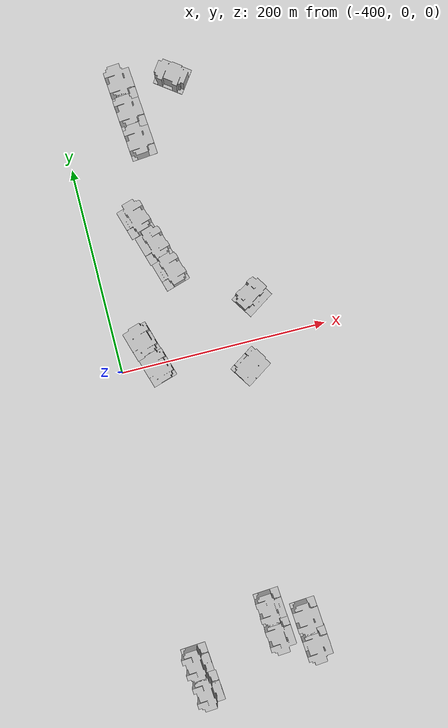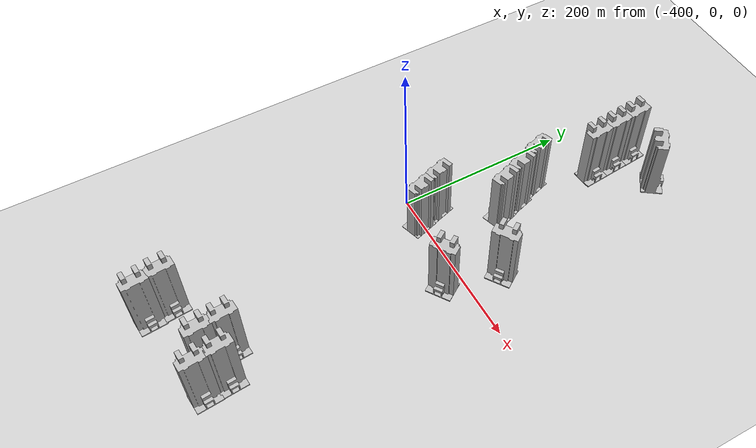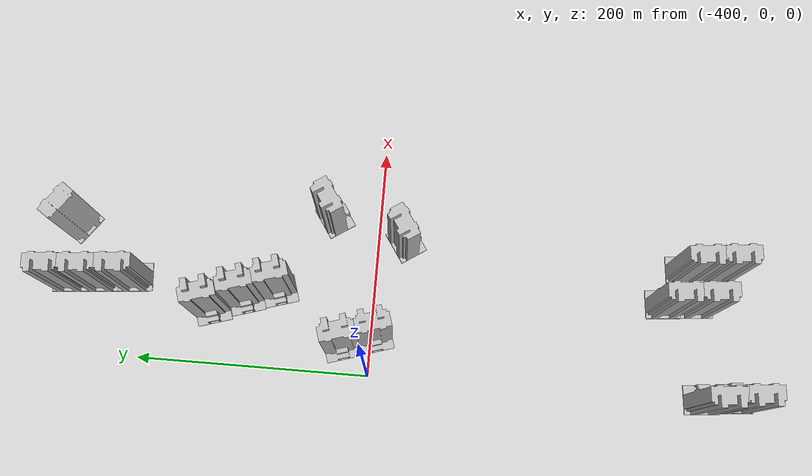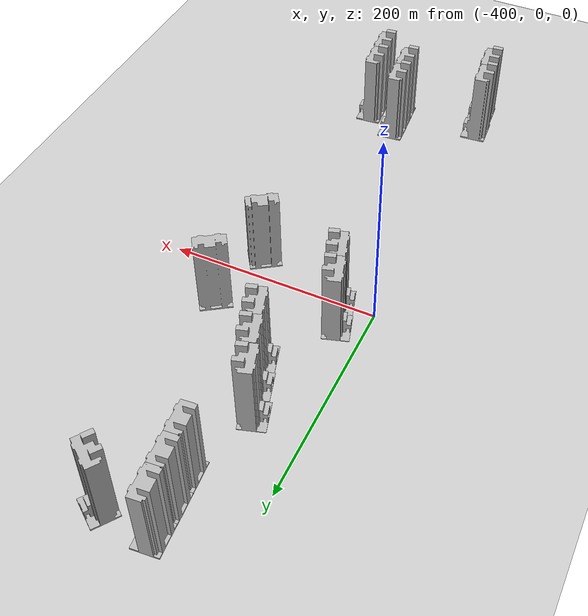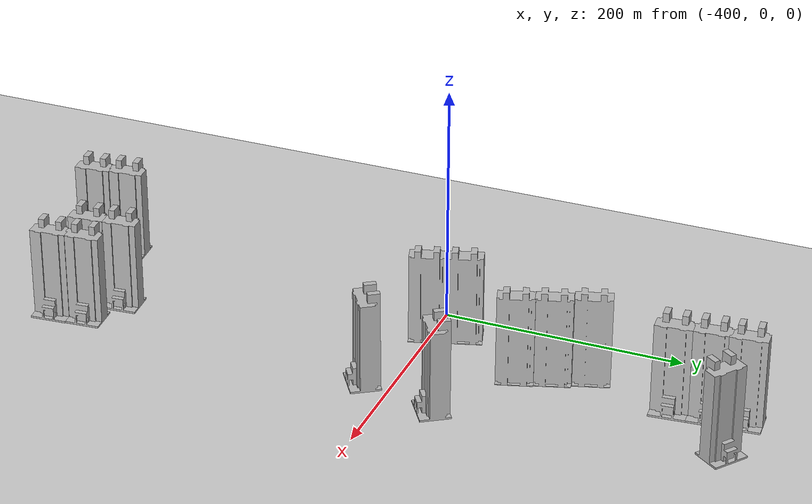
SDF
<sdf version="1.7">
 <world name="default">
  <model name="ground_plane">
   <static>1</static>
   <link name="link">
    <collision name="collision">
     <geometry><plane><normal>0 0 1</normal><size>1200 675</size></plane></geometry>
     <surface><friction><ode><mu>100</mu><mu2>50</mu2></ode></friction></surface>
    </collision>
    <visual name="visual">
     <cast_shadows>0</cast_shadows>
     <geometry><plane><normal>0 0 1</normal><size>1200 675</size></plane></geometry>
     <material>
      <script><uri>file://media/materials/scripts/gazebo.material</uri><name>Gazebo/Grey</name></script>
     </material>
    </visual>
   </link>
  </model>
  <model name="apartment_clone_5">
   <static>1</static>
   <link name="link_0">
    <inertial>
     <mass>1</mass>
     <inertia>
      <ixx>0.166667</ixx>
      <ixy>0</ixy>
      <ixz>0</ixz>
      <iyy>0.166667</iyy>
      <iyz>0</iyz>
      <izz>0.166667</izz>
     </inertia>
    </inertial>
    <pose>0.000226 2e-06 0 0 -0 0</pose>
    <visual name="visual">
     <geometry>
      <mesh>
       <uri>/home/leejeonghun/model_editor_models/apartment/scripts/apartment.dae</uri>
       <scale>0.4 0.4 0.5</scale>
      </mesh>
     </geometry>
     <material>
      <lighting>1</lighting>
      <script>
       <uri>/home/leejeonghun/model_editor_models/apartment/scripts/building.jpg</uri>
       <name>__default__</name>
      </script>
      <shader type="pixel"/>
     </material>
    </visual>
    <collision name="collision">
     <geometry>
      <mesh>
       <uri>/home/leejeonghun/model_editor_models/apartment/scripts/apartment.dae</uri>
       <scale>0.4 0.4 0.5</scale>
      </mesh>
     </geometry>
     <surface>
      <friction>
       <ode><mu>1</mu><mu2>1</mu2><fdir1>0 0 0</fdir1><slip1>0</slip1><slip2>0</slip2></ode>
       <torsional>
        <coefficient>1</coefficient>
        <patch_radius>0</patch_radius>
        <surface_radius>0</surface_radius>
        <use_patch_radius>1</use_patch_radius>
        <ode><slip>0</slip></ode>
       </torsional>
      </friction>
      <bounce><restitution_coefficient>0</restitution_coefficient><threshold>1e+06</threshold></bounce>
      <contact>
       <collide_without_contact>0</collide_without_contact>
       <collide_without_contact_bitmask>1</collide_without_contact_bitmask>
       <collide_bitmask>1</collide_bitmask>
       <ode>
        <soft_cfm>0</soft_cfm>
        <soft_erp>0.2</soft_erp>
        <kp>1e+13</kp>
        <kd>1</kd>
        <max_vel>0.01</max_vel>
        <min_depth>0</min_depth>
       </ode>
       <bullet>
        <split_impulse>1</split_impulse>
        <split_impulse_penetration_threshold>-0.01</split_impulse_penetration_threshold>
        <soft_cfm>0</soft_cfm>
        <soft_erp>0.2</soft_erp>
        <kp>1e+13</kp>
        <kd>1</kd>
       </bullet>
      </contact>
     </surface>
    </collision>
   </link>
   <static>0</static>
   <pose>-262.551 42.3093 1.45895 0 -0 0.586882</pose>
  </model>
  <model name="apartment_clone_6">
   <static>1</static>
   <link name="link_0">
    <inertial>
     <mass>1</mass>
     <inertia>
      <ixx>0.166667</ixx>
      <ixy>0</ixy>
      <ixz>0</ixz>
      <iyy>0.166667</iyy>
      <iyz>0</iyz>
      <izz>0.166667</izz>
     </inertia>
    </inertial>
    <pose>0.000226 2e-06 0 0 -0 0</pose>
    <visual name="visual">
     <geometry>
      <mesh>
       <uri>/home/leejeonghun/model_editor_models/apartment/scripts/apartment.dae</uri>
       <scale>0.4 0.4 0.5</scale>
      </mesh>
     </geometry>
     <material>
      <lighting>1</lighting>
      <script>
       <uri>/home/leejeonghun/model_editor_models/apartment/scripts/building.jpg</uri>
       <name>__default__</name>
      </script>
      <shader type="pixel"/>
     </material>
    </visual>
    <collision name="collision">
     <geometry>
      <mesh>
       <uri>/home/leejeonghun/model_editor_models/apartment/scripts/apartment.dae</uri>
       <scale>0.4 0.4 0.5</scale>
      </mesh>
     </geometry>
     <surface>
      <friction>
       <ode><mu>1</mu><mu2>1</mu2><fdir1>0 0 0</fdir1><slip1>0</slip1><slip2>0</slip2></ode>
       <torsional>
        <coefficient>1</coefficient>
        <patch_radius>0</patch_radius>
        <surface_radius>0</surface_radius>
        <use_patch_radius>1</use_patch_radius>
        <ode><slip>0</slip></ode>
       </torsional>
      </friction>
      <bounce><restitution_coefficient>0</restitution_coefficient><threshold>1e+06</threshold></bounce>
      <contact>
       <collide_without_contact>0</collide_without_contact>
       <collide_without_contact_bitmask>1</collide_without_contact_bitmask>
       <collide_bitmask>1</collide_bitmask>
       <ode>
        <soft_cfm>0</soft_cfm>
        <soft_erp>0.2</soft_erp>
        <kp>1e+13</kp>
        <kd>1</kd>
        <max_vel>0.01</max_vel>
        <min_depth>0</min_depth>
       </ode>
       <bullet>
        <split_impulse>1</split_impulse>
        <split_impulse_penetration_threshold>-0.01</split_impulse_penetration_threshold>
        <soft_cfm>0</soft_cfm>
        <soft_erp>0.2</soft_erp>
        <kp>1e+13</kp>
        <kd>1</kd>
       </bullet>
      </contact>
     </surface>
    </collision>
   </link>
   <static>0</static>
   <pose>-279.756 -22.2909 1.45895 0 -0 0.586882</pose>
  </model>
  <model name="apartment_clone_8_clone_0">
   <static>1</static>
   <link name="link_0">
    <inertial>
     <mass>1</mass>
     <inertia>
      <ixx>0.166667</ixx>
      <ixy>0</ixy>
      <ixz>0</ixz>
      <iyy>0.166667</iyy>
      <iyz>0</iyz>
      <izz>0.166667</izz>
     </inertia>
    </inertial>
    <pose>0.000226 2e-06 0 0 -0 0</pose>
    <visual name="visual">
     <geometry>
      <mesh>
       <uri>/home/leejeonghun/model_editor_models/apartment/scripts/apartment.dae</uri>
       <scale>0.4 0.4 0.5</scale>
      </mesh>
     </geometry>
     <material>
      <lighting>1</lighting>
      <script>
       <uri>/home/leejeonghun/model_editor_models/apartment/scripts/building.jpg</uri>
       <name>__default__</name>
      </script>
      <shader type="pixel"/>
     </material>
    </visual>
    <collision name="collision">
     <geometry>
      <mesh>
       <uri>/home/leejeonghun/model_editor_models/apartment/scripts/apartment.dae</uri>
       <scale>0.4 0.4 0.5</scale>
      </mesh>
     </geometry>
     <surface>
      <friction>
       <ode><mu>1</mu><mu2>1</mu2><fdir1>0 0 0</fdir1><slip1>0</slip1><slip2>0</slip2></ode>
       <torsional>
        <coefficient>1</coefficient>
        <patch_radius>0</patch_radius>
        <surface_radius>0</surface_radius>
        <use_patch_radius>1</use_patch_radius>
        <ode><slip>0</slip></ode>
       </torsional>
      </friction>
      <bounce><restitution_coefficient>0</restitution_coefficient><threshold>1e+06</threshold></bounce>
      <contact>
       <collide_without_contact>0</collide_without_contact>
       <collide_without_contact_bitmask>1</collide_without_contact_bitmask>
       <collide_bitmask>1</collide_bitmask>
       <ode>
        <soft_cfm>0</soft_cfm>
        <soft_erp>0.2</soft_erp>
        <kp>1e+13</kp>
        <kd>1</kd>
        <max_vel>0.01</max_vel>
        <min_depth>0</min_depth>
       </ode>
       <bullet>
        <split_impulse>1</split_impulse>
        <split_impulse_penetration_threshold>-0.01</split_impulse_penetration_threshold>
        <soft_cfm>0</soft_cfm>
        <soft_erp>0.2</soft_erp>
        <kp>1e+13</kp>
        <kd>1</kd>
       </bullet>
      </contact>
     </surface>
    </collision>
   </link>
   <static>0</static>
   <pose>-336.315 267.967 1.45895 0 -0 1.65687</pose>
  </model>
  <model name="apartment_clone_8_clone_1">
   <static>1</static>
   <link name="link_0">
    <inertial>
     <mass>1</mass>
     <inertia>
      <ixx>0.166667</ixx>
      <ixy>0</ixy>
      <ixz>0</ixz>
      <iyy>0.166667</iyy>
      <iyz>0</iyz>
      <izz>0.166667</izz>
     </inertia>
    </inertial>
    <pose>0.000226 2e-06 0 0 -0 0</pose>
    <visual name="visual">
     <geometry>
      <mesh>
       <uri>/home/leejeonghun/model_editor_models/apartment/scripts/apartment.dae</uri>
       <scale>0.4 0.4 0.5</scale>
      </mesh>
     </geometry>
     <material>
      <lighting>1</lighting>
      <script>
       <uri>/home/leejeonghun/model_editor_models/apartment/scripts/building.jpg</uri>
       <name>__default__</name>
      </script>
      <shader type="pixel"/>
     </material>
    </visual>
    <collision name="collision">
     <geometry>
      <mesh>
       <uri>/home/leejeonghun/model_editor_models/apartment/scripts/apartment.dae</uri>
       <scale>0.4 0.4 0.5</scale>
      </mesh>
     </geometry>
     <surface>
      <friction>
       <ode><mu>1</mu><mu2>1</mu2><fdir1>0 0 0</fdir1><slip1>0</slip1><slip2>0</slip2></ode>
       <torsional>
        <coefficient>1</coefficient>
        <patch_radius>0</patch_radius>
        <surface_radius>0</surface_radius>
        <use_patch_radius>1</use_patch_radius>
        <ode><slip>0</slip></ode>
       </torsional>
      </friction>
      <bounce><restitution_coefficient>0</restitution_coefficient><threshold>1e+06</threshold></bounce>
      <contact>
       <collide_without_contact>0</collide_without_contact>
       <collide_without_contact_bitmask>1</collide_without_contact_bitmask>
       <collide_bitmask>1</collide_bitmask>
       <ode>
        <soft_cfm>0</soft_cfm>
        <soft_erp>0.2</soft_erp>
        <kp>1e+13</kp>
        <kd>1</kd>
        <max_vel>0.01</max_vel>
        <min_depth>0</min_depth>
       </ode>
       <bullet>
        <split_impulse>1</split_impulse>
        <split_impulse_penetration_threshold>-0.01</split_impulse_penetration_threshold>
        <soft_cfm>0</soft_cfm>
        <soft_erp>0.2</soft_erp>
        <kp>1e+13</kp>
        <kd>1</kd>
       </bullet>
      </contact>
     </surface>
    </collision>
   </link>
   <static>0</static>
   <pose>-334.105 239.915 1.45895 0 -0 1.65687</pose>
  </model>
  <model name="apartment_clone_8_clone_2">
   <static>1</static>
   <link name="link_0">
    <inertial>
     <mass>1</mass>
     <inertia>
      <ixx>0.166667</ixx>
      <ixy>0</ixy>
      <ixz>0</ixz>
      <iyy>0.166667</iyy>
      <iyz>0</iyz>
      <izz>0.166667</izz>
     </inertia>
    </inertial>
    <pose>0.000226 2e-06 0 0 -0 0</pose>
    <visual name="visual">
     <geometry>
      <mesh>
       <uri>/home/leejeonghun/model_editor_models/apartment/scripts/apartment.dae</uri>
       <scale>0.4 0.4 0.5</scale>
      </mesh>
     </geometry>
     <material>
      <lighting>1</lighting>
      <script>
       <uri>/home/leejeonghun/model_editor_models/apartment/scripts/building.jpg</uri>
       <name>__default__</name>
      </script>
      <shader type="pixel"/>
     </material>
    </visual>
    <collision name="collision">
     <geometry>
      <mesh>
       <uri>/home/leejeonghun/model_editor_models/apartment/scripts/apartment.dae</uri>
       <scale>0.4 0.4 0.5</scale>
      </mesh>
     </geometry>
     <surface>
      <friction>
       <ode><mu>1</mu><mu2>1</mu2><fdir1>0 0 0</fdir1><slip1>0</slip1><slip2>0</slip2></ode>
       <torsional>
        <coefficient>1</coefficient>
        <patch_radius>0</patch_radius>
        <surface_radius>0</surface_radius>
        <use_patch_radius>1</use_patch_radius>
        <ode><slip>0</slip></ode>
       </torsional>
      </friction>
      <bounce><restitution_coefficient>0</restitution_coefficient><threshold>1e+06</threshold></bounce>
      <contact>
       <collide_without_contact>0</collide_without_contact>
       <collide_without_contact_bitmask>1</collide_without_contact_bitmask>
       <collide_bitmask>1</collide_bitmask>
       <ode>
        <soft_cfm>0</soft_cfm>
        <soft_erp>0.2</soft_erp>
        <kp>1e+13</kp>
        <kd>1</kd>
        <max_vel>0.01</max_vel>
        <min_depth>0</min_depth>
       </ode>
       <bullet>
        <split_impulse>1</split_impulse>
        <split_impulse_penetration_threshold>-0.01</split_impulse_penetration_threshold>
        <soft_cfm>0</soft_cfm>
        <soft_erp>0.2</soft_erp>
        <kp>1e+13</kp>
        <kd>1</kd>
       </bullet>
      </contact>
     </surface>
    </collision>
   </link>
   <static>0</static>
   <pose>-331.53 210.597 1.45895 0 -0 1.65687</pose>
  </model>
  <model name="apartment_clone_8_clone_3">
   <static>1</static>
   <link name="link_0">
    <inertial>
     <mass>1</mass>
     <inertia>
      <ixx>0.166667</ixx>
      <ixy>0</ixy>
      <ixz>0</ixz>
      <iyy>0.166667</iyy>
      <iyz>0</iyz>
      <izz>0.166667</izz>
     </inertia>
    </inertial>
    <pose>0.000226 2e-06 0 0 -0 0</pose>
    <visual name="visual">
     <geometry>
      <mesh>
       <uri>/home/leejeonghun/model_editor_models/apartment/scripts/apartment.dae</uri>
       <scale>0.4 0.4 0.5</scale>
      </mesh>
     </geometry>
     <material>
      <lighting>1</lighting>
      <script>
       <uri>/home/leejeonghun/model_editor_models/apartment/scripts/building.jpg</uri>
       <name>__default__</name>
      </script>
      <shader type="pixel"/>
     </material>
    </visual>
    <collision name="collision">
     <geometry>
      <mesh>
       <uri>/home/leejeonghun/model_editor_models/apartment/scripts/apartment.dae</uri>
       <scale>0.4 0.4 0.5</scale>
      </mesh>
     </geometry>
     <surface>
      <friction>
       <ode><mu>1</mu><mu2>1</mu2><fdir1>0 0 0</fdir1><slip1>0</slip1><slip2>0</slip2></ode>
       <torsional>
        <coefficient>1</coefficient>
        <patch_radius>0</patch_radius>
        <surface_radius>0</surface_radius>
        <use_patch_radius>1</use_patch_radius>
        <ode><slip>0</slip></ode>
       </torsional>
      </friction>
      <bounce><restitution_coefficient>0</restitution_coefficient><threshold>1e+06</threshold></bounce>
      <contact>
       <collide_without_contact>0</collide_without_contact>
       <collide_without_contact_bitmask>1</collide_without_contact_bitmask>
       <collide_bitmask>1</collide_bitmask>
       <ode>
        <soft_cfm>0</soft_cfm>
        <soft_erp>0.2</soft_erp>
        <kp>1e+13</kp>
        <kd>1</kd>
        <max_vel>0.01</max_vel>
        <min_depth>0</min_depth>
       </ode>
       <bullet>
        <split_impulse>1</split_impulse>
        <split_impulse_penetration_threshold>-0.01</split_impulse_penetration_threshold>
        <soft_cfm>0</soft_cfm>
        <soft_erp>0.2</soft_erp>
        <kp>1e+13</kp>
        <kd>1</kd>
       </bullet>
      </contact>
     </surface>
    </collision>
   </link>
   <static>0</static>
   <pose>-285.637 263.644 1.45895 0 -0 2.51739</pose>
  </model>
  <model name="apartment_0">
   <static>1</static>
   <link name="link_0">
    <inertial>
     <mass>1</mass>
     <inertia>
      <ixx>0.166667</ixx>
      <ixy>0</ixy>
      <ixz>0</ixz>
      <iyy>0.166667</iyy>
      <iyz>0</iyz>
      <izz>0.166667</izz>
     </inertia>
    </inertial>
    <pose>0.000226 2e-06 0 0 -0 0</pose>
    <visual name="visual">
     <geometry>
      <mesh>
       <uri>/home/leejeonghun/model_editor_models/apartment/scripts/apartment.dae</uri>
       <scale>0.4 0.4 0.5</scale>
      </mesh>
     </geometry>
     <material>
      <lighting>1</lighting>
      <script>
       <uri>/home/leejeonghun/model_editor_models/apartment/scripts/building.jpg</uri>
       <name>__default__</name>
      </script>
      <shader type="pixel"/>
     </material>
    </visual>
    <collision name="collision">
     <geometry>
      <mesh>
       <uri>/home/leejeonghun/model_editor_models/apartment/scripts/apartment.dae</uri>
       <scale>0.4 0.4 0.5</scale>
      </mesh>
     </geometry>
     <surface>
      <friction>
       <ode><mu>1</mu><mu2>1</mu2><fdir1>0 0 0</fdir1><slip1>0</slip1><slip2>0</slip2></ode>
       <torsional>
        <coefficient>1</coefficient>
        <patch_radius>0</patch_radius>
        <surface_radius>0</surface_radius>
        <use_patch_radius>1</use_patch_radius>
        <ode><slip>0</slip></ode>
       </torsional>
      </friction>
      <bounce><restitution_coefficient>0</restitution_coefficient><threshold>1e+06</threshold></bounce>
      <contact>
       <collide_without_contact>0</collide_without_contact>
       <collide_without_contact_bitmask>1</collide_without_contact_bitmask>
       <collide_bitmask>1</collide_bitmask>
       <ode>
        <soft_cfm>0</soft_cfm>
        <soft_erp>0.2</soft_erp>
        <kp>1e+13</kp>
        <kd>1</kd>
        <max_vel>0.01</max_vel>
        <min_depth>0</min_depth>
       </ode>
       <bullet>
        <split_impulse>1</split_impulse>
        <split_impulse_penetration_threshold>-0.01</split_impulse_penetration_threshold>
        <soft_cfm>0</soft_cfm>
        <soft_erp>0.2</soft_erp>
        <kp>1e+13</kp>
        <kd>1</kd>
       </bullet>
      </contact>
     </surface>
    </collision>
   </link>
   <static>0</static>
   <pose>-351.034 140.143 0 0 0 -1.27445</pose>
  </model>
  <model name="apartment_0_clone">
   <static>1</static>
   <link name="link_0">
    <inertial>
     <mass>1</mass>
     <inertia>
      <ixx>0.166667</ixx>
      <ixy>0</ixy>
      <ixz>0</ixz>
      <iyy>0.166667</iyy>
      <iyz>0</iyz>
      <izz>0.166667</izz>
     </inertia>
    </inertial>
    <pose>0.000226 2e-06 0 0 -0 0</pose>
    <visual name="visual">
     <geometry>
      <mesh>
       <uri>/home/leejeonghun/model_editor_models/apartment/scripts/apartment.dae</uri>
       <scale>0.4 0.4 0.5</scale>
      </mesh>
     </geometry>
     <material>
      <lighting>1</lighting>
      <script>
       <uri>/home/leejeonghun/model_editor_models/apartment/scripts/building.jpg</uri>
       <name>__default__</name>
      </script>
      <shader type="pixel"/>
     </material>
    </visual>
    <collision name="collision">
     <geometry>
      <mesh>
       <uri>/home/leejeonghun/model_editor_models/apartment/scripts/apartment.dae</uri>
       <scale>0.4 0.4 0.5</scale>
      </mesh>
     </geometry>
     <surface>
      <friction>
       <ode><mu>1</mu><mu2>1</mu2><fdir1>0 0 0</fdir1><slip1>0</slip1><slip2>0</slip2></ode>
       <torsional>
        <coefficient>1</coefficient>
        <patch_radius>0</patch_radius>
        <surface_radius>0</surface_radius>
        <use_patch_radius>1</use_patch_radius>
        <ode><slip>0</slip></ode>
       </torsional>
      </friction>
      <bounce><restitution_coefficient>0</restitution_coefficient><threshold>1e+06</threshold></bounce>
      <contact>
       <collide_without_contact>0</collide_without_contact>
       <collide_without_contact_bitmask>1</collide_without_contact_bitmask>
       <collide_bitmask>1</collide_bitmask>
       <ode>
        <soft_cfm>0</soft_cfm>
        <soft_erp>0.2</soft_erp>
        <kp>1e+13</kp>
        <kd>1</kd>
        <max_vel>0.01</max_vel>
        <min_depth>0</min_depth>
       </ode>
       <bullet>
        <split_impulse>1</split_impulse>
        <split_impulse_penetration_threshold>-0.01</split_impulse_penetration_threshold>
        <soft_cfm>0</soft_cfm>
        <soft_erp>0.2</soft_erp>
        <kp>1e+13</kp>
        <kd>1</kd>
       </bullet>
      </contact>
     </surface>
    </collision>
   </link>
   <static>0</static>
   <pose>-339.722 111.799 0 0 0 -1.27445</pose>
  </model>
  <model name="apartment_0_clone_0">
   <static>1</static>
   <link name="link_0">
    <inertial>
     <mass>1</mass>
     <inertia>
      <ixx>0.166667</ixx>
      <ixy>0</ixy>
      <ixz>0</ixz>
      <iyy>0.166667</iyy>
      <iyz>0</iyz>
      <izz>0.166667</izz>
     </inertia>
    </inertial>
    <pose>0.000226 2e-06 0 0 -0 0</pose>
    <visual name="visual">
     <geometry>
      <mesh>
       <uri>/home/leejeonghun/model_editor_models/apartment/scripts/apartment.dae</uri>
       <scale>0.4 0.4 0.5</scale>
      </mesh>
     </geometry>
     <material>
      <lighting>1</lighting>
      <script>
       <uri>/home/leejeonghun/model_editor_models/apartment/scripts/building.jpg</uri>
       <name>__default__</name>
      </script>
      <shader type="pixel"/>
     </material>
    </visual>
    <collision name="collision">
     <geometry>
      <mesh>
       <uri>/home/leejeonghun/model_editor_models/apartment/scripts/apartment.dae</uri>
       <scale>0.4 0.4 0.5</scale>
      </mesh>
     </geometry>
     <surface>
      <friction>
       <ode><mu>1</mu><mu2>1</mu2><fdir1>0 0 0</fdir1><slip1>0</slip1><slip2>0</slip2></ode>
       <torsional>
        <coefficient>1</coefficient>
        <patch_radius>0</patch_radius>
        <surface_radius>0</surface_radius>
        <use_patch_radius>1</use_patch_radius>
        <ode><slip>0</slip></ode>
       </torsional>
      </friction>
      <bounce><restitution_coefficient>0</restitution_coefficient><threshold>1e+06</threshold></bounce>
      <contact>
       <collide_without_contact>0</collide_without_contact>
       <collide_without_contact_bitmask>1</collide_without_contact_bitmask>
       <collide_bitmask>1</collide_bitmask>
       <ode>
        <soft_cfm>0</soft_cfm>
        <soft_erp>0.2</soft_erp>
        <kp>1e+13</kp>
        <kd>1</kd>
        <max_vel>0.01</max_vel>
        <min_depth>0</min_depth>
       </ode>
       <bullet>
        <split_impulse>1</split_impulse>
        <split_impulse_penetration_threshold>-0.01</split_impulse_penetration_threshold>
        <soft_cfm>0</soft_cfm>
        <soft_erp>0.2</soft_erp>
        <kp>1e+13</kp>
        <kd>1</kd>
       </bullet>
      </contact>
     </surface>
    </collision>
   </link>
   <static>0</static>
   <pose>-330.246 83.9468 0 0 0 -1.27445</pose>
  </model>
  <model name="apartment_0_clone_0_clone">
   <static>1</static>
   <link name="link_0">
    <inertial>
     <mass>1</mass>
     <inertia>
      <ixx>0.166667</ixx>
      <ixy>0</ixy>
      <ixz>0</ixz>
      <iyy>0.166667</iyy>
      <iyz>0</iyz>
      <izz>0.166667</izz>
     </inertia>
    </inertial>
    <pose>0.000226 2e-06 0 0 -0 0</pose>
    <visual name="visual">
     <geometry>
      <mesh>
       <uri>/home/leejeonghun/model_editor_models/apartment/scripts/apartment.dae</uri>
       <scale>0.4 0.4 0.5</scale>
      </mesh>
     </geometry>
     <material>
      <lighting>1</lighting>
      <script>
       <uri>/home/leejeonghun/model_editor_models/apartment/scripts/building.jpg</uri>
       <name>__default__</name>
      </script>
      <shader type="pixel"/>
     </material>
    </visual>
    <collision name="collision">
     <geometry>
      <mesh>
       <uri>/home/leejeonghun/model_editor_models/apartment/scripts/apartment.dae</uri>
       <scale>0.4 0.4 0.5</scale>
      </mesh>
     </geometry>
     <surface>
      <friction>
       <ode><mu>1</mu><mu2>1</mu2><fdir1>0 0 0</fdir1><slip1>0</slip1><slip2>0</slip2></ode>
       <torsional>
        <coefficient>1</coefficient>
        <patch_radius>0</patch_radius>
        <surface_radius>0</surface_radius>
        <use_patch_radius>1</use_patch_radius>
        <ode><slip>0</slip></ode>
       </torsional>
      </friction>
      <bounce><restitution_coefficient>0</restitution_coefficient><threshold>1e+06</threshold></bounce>
      <contact>
       <collide_without_contact>0</collide_without_contact>
       <collide_without_contact_bitmask>1</collide_without_contact_bitmask>
       <collide_bitmask>1</collide_bitmask>
       <ode>
        <soft_cfm>0</soft_cfm>
        <soft_erp>0.2</soft_erp>
        <kp>1e+13</kp>
        <kd>1</kd>
        <max_vel>0.01</max_vel>
        <min_depth>0</min_depth>
       </ode>
       <bullet>
        <split_impulse>1</split_impulse>
        <split_impulse_penetration_threshold>-0.01</split_impulse_penetration_threshold>
        <soft_cfm>0</soft_cfm>
        <soft_erp>0.2</soft_erp>
        <kp>1e+13</kp>
        <kd>1</kd>
       </bullet>
      </contact>
     </surface>
    </collision>
   </link>
   <static>0</static>
   <pose>-373.551 25.2119 0 0 0 -1.27445</pose>
  </model>
  <model name="apartment_0_clone_0_clone_0">
   <static>1</static>
   <link name="link_0">
    <inertial>
     <mass>1</mass>
     <inertia>
      <ixx>0.166667</ixx>
      <ixy>0</ixy>
      <ixz>0</ixz>
      <iyy>0.166667</iyy>
      <iyz>0</iyz>
      <izz>0.166667</izz>
     </inertia>
    </inertial>
    <pose>0.000226 2e-06 0 0 -0 0</pose>
    <visual name="visual">
     <geometry>
      <mesh>
       <uri>/home/leejeonghun/model_editor_models/apartment/scripts/apartment.dae</uri>
       <scale>0.4 0.4 0.5</scale>
      </mesh>
     </geometry>
     <material>
      <lighting>1</lighting>
      <script>
       <uri>/home/leejeonghun/model_editor_models/apartment/scripts/building.jpg</uri>
       <name>__default__</name>
      </script>
      <shader type="pixel"/>
     </material>
    </visual>
    <collision name="collision">
     <geometry>
      <mesh>
       <uri>/home/leejeonghun/model_editor_models/apartment/scripts/apartment.dae</uri>
       <scale>0.4 0.4 0.5</scale>
      </mesh>
     </geometry>
     <surface>
      <friction>
       <ode><mu>1</mu><mu2>1</mu2><fdir1>0 0 0</fdir1><slip1>0</slip1><slip2>0</slip2></ode>
       <torsional>
        <coefficient>1</coefficient>
        <patch_radius>0</patch_radius>
        <surface_radius>0</surface_radius>
        <use_patch_radius>1</use_patch_radius>
        <ode><slip>0</slip></ode>
       </torsional>
      </friction>
      <bounce><restitution_coefficient>0</restitution_coefficient><threshold>1e+06</threshold></bounce>
      <contact>
       <collide_without_contact>0</collide_without_contact>
       <collide_without_contact_bitmask>1</collide_without_contact_bitmask>
       <collide_bitmask>1</collide_bitmask>
       <ode>
        <soft_cfm>0</soft_cfm>
        <soft_erp>0.2</soft_erp>
        <kp>1e+13</kp>
        <kd>1</kd>
        <max_vel>0.01</max_vel>
        <min_depth>0</min_depth>
       </ode>
       <bullet>
        <split_impulse>1</split_impulse>
        <split_impulse_penetration_threshold>-0.01</split_impulse_penetration_threshold>
        <soft_cfm>0</soft_cfm>
        <soft_erp>0.2</soft_erp>
        <kp>1e+13</kp>
        <kd>1</kd>
       </bullet>
      </contact>
     </surface>
    </collision>
   </link>
   <static>0</static>
   <pose>-364.458 -2.78901 0 0 0 -1.27445</pose>
  </model>
  <model name="apartment_0_clone_0_clone_1_clone_2_clone_2_clone">
   <static>1</static>
   <link name="link_0">
    <inertial>
     <mass>1</mass>
     <inertia>
      <ixx>0.166667</ixx>
      <ixy>0</ixy>
      <ixz>0</ixz>
      <iyy>0.166667</iyy>
      <iyz>0</iyz>
      <izz>0.166667</izz>
     </inertia>
    </inertial>
    <pose>0.000226 2e-06 0 0 -0 0</pose>
    <visual name="visual">
     <geometry>
      <mesh>
       <uri>/home/leejeonghun/model_editor_models/apartment/scripts/apartment.dae</uri>
       <scale>0.4 0.4 0.5</scale>
      </mesh>
     </geometry>
     <material>
      <lighting>1</lighting>
      <script>
       <uri>/home/leejeonghun/model_editor_models/apartment/scripts/building.jpg</uri>
       <name>__default__</name>
      </script>
      <shader type="pixel"/>
     </material>
    </visual>
    <collision name="collision">
     <geometry>
      <mesh>
       <uri>/home/leejeonghun/model_editor_models/apartment/scripts/apartment.dae</uri>
       <scale>0.4 0.4 0.5</scale>
      </mesh>
     </geometry>
     <surface>
      <friction>
       <ode><mu>1</mu><mu2>1</mu2><fdir1>0 0 0</fdir1><slip1>0</slip1><slip2>0</slip2></ode>
       <torsional>
        <coefficient>1</coefficient>
        <patch_radius>0</patch_radius>
        <surface_radius>0</surface_radius>
        <use_patch_radius>1</use_patch_radius>
        <ode><slip>0</slip></ode>
       </torsional>
      </friction>
      <bounce><restitution_coefficient>0</restitution_coefficient><threshold>1e+06</threshold></bounce>
      <contact>
       <collide_without_contact>0</collide_without_contact>
       <collide_without_contact_bitmask>1</collide_without_contact_bitmask>
       <collide_bitmask>1</collide_bitmask>
       <ode>
        <soft_cfm>0</soft_cfm>
        <soft_erp>0.2</soft_erp>
        <kp>1e+13</kp>
        <kd>1</kd>
        <max_vel>0.01</max_vel>
        <min_depth>0</min_depth>
       </ode>
       <bullet>
        <split_impulse>1</split_impulse>
        <split_impulse_penetration_threshold>-0.01</split_impulse_penetration_threshold>
        <soft_cfm>0</soft_cfm>
        <soft_erp>0.2</soft_erp>
        <kp>1e+13</kp>
        <kd>1</kd>
       </bullet>
      </contact>
     </surface>
    </collision>
   </link>
   <static>0</static>
   <pose>-286.018 -268.353 1.76839 0 -0 1.65207</pose>
  </model>
  <model name="apartment_0_clone_0_clone_1_clone_2_clone_2_clone_0">
   <static>1</static>
   <link name="link_0">
    <inertial>
     <mass>1</mass>
     <inertia>
      <ixx>0.166667</ixx>
      <ixy>0</ixy>
      <ixz>0</ixz>
      <iyy>0.166667</iyy>
      <iyz>0</iyz>
      <izz>0.166667</izz>
     </inertia>
    </inertial>
    <pose>0.000226 2e-06 0 0 -0 0</pose>
    <visual name="visual">
     <geometry>
      <mesh>
       <uri>/home/leejeonghun/model_editor_models/apartment/scripts/apartment.dae</uri>
       <scale>0.4 0.4 0.5</scale>
      </mesh>
     </geometry>
     <material>
      <lighting>1</lighting>
      <script>
       <uri>/home/leejeonghun/model_editor_models/apartment/scripts/building.jpg</uri>
       <name>__default__</name>
      </script>
      <shader type="pixel"/>
     </material>
    </visual>
    <collision name="collision">
     <geometry>
      <mesh>
       <uri>/home/leejeonghun/model_editor_models/apartment/scripts/apartment.dae</uri>
       <scale>0.4 0.4 0.5</scale>
      </mesh>
     </geometry>
     <surface>
      <friction>
       <ode><mu>1</mu><mu2>1</mu2><fdir1>0 0 0</fdir1><slip1>0</slip1><slip2>0</slip2></ode>
       <torsional>
        <coefficient>1</coefficient>
        <patch_radius>0</patch_radius>
        <surface_radius>0</surface_radius>
        <use_patch_radius>1</use_patch_radius>
        <ode><slip>0</slip></ode>
       </torsional>
      </friction>
      <bounce><restitution_coefficient>0</restitution_coefficient><threshold>1e+06</threshold></bounce>
      <contact>
       <collide_without_contact>0</collide_without_contact>
       <collide_without_contact_bitmask>1</collide_without_contact_bitmask>
       <collide_bitmask>1</collide_bitmask>
       <ode>
        <soft_cfm>0</soft_cfm>
        <soft_erp>0.2</soft_erp>
        <kp>1e+13</kp>
        <kd>1</kd>
        <max_vel>0.01</max_vel>
        <min_depth>0</min_depth>
       </ode>
       <bullet>
        <split_impulse>1</split_impulse>
        <split_impulse_penetration_threshold>-0.01</split_impulse_penetration_threshold>
        <soft_cfm>0</soft_cfm>
        <soft_erp>0.2</soft_erp>
        <kp>1e+13</kp>
        <kd>1</kd>
       </bullet>
      </contact>
     </surface>
    </collision>
   </link>
   <static>0</static>
   <pose>-317.789 -251.319 1.76839 0 -0 1.65207</pose>
  </model>
  <model name="apartment_0_clone_0_clone_1_clone_2_clone_2_clone_1">
   <static>1</static>
   <link name="link_0">
    <inertial>
     <mass>1</mass>
     <inertia>
      <ixx>0.166667</ixx>
      <ixy>0</ixy>
      <ixz>0</ixz>
      <iyy>0.166667</iyy>
      <iyz>0</iyz>
      <izz>0.166667</izz>
     </inertia>
    </inertial>
    <pose>0.000226 2e-06 0 0 -0 0</pose>
    <visual name="visual">
     <geometry>
      <mesh>
       <uri>/home/leejeonghun/model_editor_models/apartment/scripts/apartment.dae</uri>
       <scale>0.4 0.4 0.5</scale>
      </mesh>
     </geometry>
     <material>
      <lighting>1</lighting>
      <script>
       <uri>/home/leejeonghun/model_editor_models/apartment/scripts/building.jpg</uri>
       <name>__default__</name>
      </script>
      <shader type="pixel"/>
     </material>
    </visual>
    <collision name="collision">
     <geometry>
      <mesh>
       <uri>/home/leejeonghun/model_editor_models/apartment/scripts/apartment.dae</uri>
       <scale>0.4 0.4 0.5</scale>
      </mesh>
     </geometry>
     <surface>
      <friction>
       <ode><mu>1</mu><mu2>1</mu2><fdir1>0 0 0</fdir1><slip1>0</slip1><slip2>0</slip2></ode>
       <torsional>
        <coefficient>1</coefficient>
        <patch_radius>0</patch_radius>
        <surface_radius>0</surface_radius>
        <use_patch_radius>1</use_patch_radius>
        <ode><slip>0</slip></ode>
       </torsional>
      </friction>
      <bounce><restitution_coefficient>0</restitution_coefficient><threshold>1e+06</threshold></bounce>
      <contact>
       <collide_without_contact>0</collide_without_contact>
       <collide_without_contact_bitmask>1</collide_without_contact_bitmask>
       <collide_bitmask>1</collide_bitmask>
       <ode>
        <soft_cfm>0</soft_cfm>
        <soft_erp>0.2</soft_erp>
        <kp>1e+13</kp>
        <kd>1</kd>
        <max_vel>0.01</max_vel>
        <min_depth>0</min_depth>
       </ode>
       <bullet>
        <split_impulse>1</split_impulse>
        <split_impulse_penetration_threshold>-0.01</split_impulse_penetration_threshold>
        <soft_cfm>0</soft_cfm>
        <soft_erp>0.2</soft_erp>
        <kp>1e+13</kp>
        <kd>1</kd>
       </bullet>
      </contact>
     </surface>
    </collision>
   </link>
   <static>0</static>
   <pose>-394.691 -314.525 1.76839 0 -0 1.65207</pose>
  </model>
  <model name="apartment_0_clone_0_clone_1_clone_2_clone_2_clone_2">
   <static>1</static>
   <link name="link_0">
    <inertial>
     <mass>1</mass>
     <inertia>
      <ixx>0.166667</ixx>
      <ixy>0</ixy>
      <ixz>0</ixz>
      <iyy>0.166667</iyy>
      <iyz>0</iyz>
      <izz>0.166667</izz>
     </inertia>
    </inertial>
    <pose>0.000226 2e-06 0 0 -0 0</pose>
    <visual name="visual">
     <geometry>
      <mesh>
       <uri>/home/leejeonghun/model_editor_models/apartment/scripts/apartment.dae</uri>
       <scale>0.4 0.4 0.5</scale>
      </mesh>
     </geometry>
     <material>
      <lighting>1</lighting>
      <script>
       <uri>/home/leejeonghun/model_editor_models/apartment/scripts/building.jpg</uri>
       <name>__default__</name>
      </script>
      <shader type="pixel"/>
     </material>
    </visual>
    <collision name="collision">
     <geometry>
      <mesh>
       <uri>/home/leejeonghun/model_editor_models/apartment/scripts/apartment.dae</uri>
       <scale>0.4 0.4 0.5</scale>
      </mesh>
     </geometry>
     <surface>
      <friction>
       <ode><mu>1</mu><mu2>1</mu2><fdir1>0 0 0</fdir1><slip1>0</slip1><slip2>0</slip2></ode>
       <torsional>
        <coefficient>1</coefficient>
        <patch_radius>0</patch_radius>
        <surface_radius>0</surface_radius>
        <use_patch_radius>1</use_patch_radius>
        <ode><slip>0</slip></ode>
       </torsional>
      </friction>
      <bounce><restitution_coefficient>0</restitution_coefficient><threshold>1e+06</threshold></bounce>
      <contact>
       <collide_without_contact>0</collide_without_contact>
       <collide_without_contact_bitmask>1</collide_without_contact_bitmask>
       <collide_bitmask>1</collide_bitmask>
       <ode>
        <soft_cfm>0</soft_cfm>
        <soft_erp>0.2</soft_erp>
        <kp>1e+13</kp>
        <kd>1</kd>
        <max_vel>0.01</max_vel>
        <min_depth>0</min_depth>
       </ode>
       <bullet>
        <split_impulse>1</split_impulse>
        <split_impulse_penetration_threshold>-0.01</split_impulse_penetration_threshold>
        <soft_cfm>0</soft_cfm>
        <soft_erp>0.2</soft_erp>
        <kp>1e+13</kp>
        <kd>1</kd>
       </bullet>
      </contact>
     </surface>
    </collision>
   </link>
   <static>0</static>
   <pose>-398.281 -286.018 1.76839 0 -0 1.65207</pose>
  </model>
  <model name="apartment_0_clone_0_clone_1_clone_2_clone_2_clone_clone_0">
   <static>1</static>
   <link name="link_0">
    <inertial>
     <mass>1</mass>
     <inertia>
      <ixx>0.166667</ixx>
      <ixy>0</ixy>
      <ixz>0</ixz>
      <iyy>0.166667</iyy>
      <iyz>0</iyz>
      <izz>0.166667</izz>
     </inertia>
    </inertial>
    <pose>0.000226 2e-06 0 0 -0 0</pose>
    <visual name="visual">
     <geometry>
      <mesh>
       <uri>/home/leejeonghun/model_editor_models/apartment/scripts/apartment.dae</uri>
       <scale>0.4 0.4 0.5</scale>
      </mesh>
     </geometry>
     <material>
      <lighting>1</lighting>
      <script>
       <uri>/home/leejeonghun/model_editor_models/apartment/scripts/building.jpg</uri>
       <name>__default__</name>
      </script>
      <shader type="pixel"/>
     </material>
    </visual>
    <collision name="collision">
     <geometry>
      <mesh>
       <uri>/home/leejeonghun/model_editor_models/apartment/scripts/apartment.dae</uri>
       <scale>0.4 0.4 0.5</scale>
      </mesh>
     </geometry>
     <surface>
      <friction>
       <ode><mu>1</mu><mu2>1</mu2><fdir1>0 0 0</fdir1><slip1>0</slip1><slip2>0</slip2></ode>
       <torsional>
        <coefficient>1</coefficient>
        <patch_radius>0</patch_radius>
        <surface_radius>0</surface_radius>
        <use_patch_radius>1</use_patch_radius>
        <ode><slip>0</slip></ode>
       </torsional>
      </friction>
      <bounce><restitution_coefficient>0</restitution_coefficient><threshold>1e+06</threshold></bounce>
      <contact>
       <collide_without_contact>0</collide_without_contact>
       <collide_without_contact_bitmask>1</collide_without_contact_bitmask>
       <collide_bitmask>1</collide_bitmask>
       <ode>
        <soft_cfm>0</soft_cfm>
        <soft_erp>0.2</soft_erp>
        <kp>1e+13</kp>
        <kd>1</kd>
        <max_vel>0.01</max_vel>
        <min_depth>0</min_depth>
       </ode>
       <bullet>
        <split_impulse>1</split_impulse>
        <split_impulse_penetration_threshold>-0.01</split_impulse_penetration_threshold>
        <soft_cfm>0</soft_cfm>
        <soft_erp>0.2</soft_erp>
        <kp>1e+13</kp>
        <kd>1</kd>
       </bullet>
      </contact>
     </surface>
    </collision>
   </link>
   <static>0</static>
   <pose>-283.273 -296.647 1.76839 0 -0 1.65207</pose>
  </model>
  <model name="apartment_0_clone_0_clone_1_clone_2_clone_2_clone_clone_1">
   <static>1</static>
   <link name="link_0">
    <inertial>
     <mass>1</mass>
     <inertia>
      <ixx>0.166667</ixx>
      <ixy>0</ixy>
      <ixz>0</ixz>
      <iyy>0.166667</iyy>
      <iyz>0</iyz>
      <izz>0.166667</izz>
     </inertia>
    </inertial>
    <pose>0.000226 2e-06 0 0 -0 0</pose>
    <visual name="visual">
     <geometry>
      <mesh>
       <uri>/home/leejeonghun/model_editor_models/apartment/scripts/apartment.dae</uri>
       <scale>0.4 0.4 0.5</scale>
      </mesh>
     </geometry>
     <material>
      <lighting>1</lighting>
      <script>
       <uri>/home/leejeonghun/model_editor_models/apartment/scripts/building.jpg</uri>
       <name>__default__</name>
      </script>
      <shader type="pixel"/>
     </material>
    </visual>
    <collision name="collision">
     <geometry>
      <mesh>
       <uri>/home/leejeonghun/model_editor_models/apartment/scripts/apartment.dae</uri>
       <scale>0.4 0.4 0.5</scale>
      </mesh>
     </geometry>
     <surface>
      <friction>
       <ode><mu>1</mu><mu2>1</mu2><fdir1>0 0 0</fdir1><slip1>0</slip1><slip2>0</slip2></ode>
       <torsional>
        <coefficient>1</coefficient>
        <patch_radius>0</patch_radius>
        <surface_radius>0</surface_radius>
        <use_patch_radius>1</use_patch_radius>
        <ode><slip>0</slip></ode>
       </torsional>
      </friction>
      <bounce><restitution_coefficient>0</restitution_coefficient><threshold>1e+06</threshold></bounce>
      <contact>
       <collide_without_contact>0</collide_without_contact>
       <collide_without_contact_bitmask>1</collide_without_contact_bitmask>
       <collide_bitmask>1</collide_bitmask>
       <ode>
        <soft_cfm>0</soft_cfm>
        <soft_erp>0.2</soft_erp>
        <kp>1e+13</kp>
        <kd>1</kd>
        <max_vel>0.01</max_vel>
        <min_depth>0</min_depth>
       </ode>
       <bullet>
        <split_impulse>1</split_impulse>
        <split_impulse_penetration_threshold>-0.01</split_impulse_penetration_threshold>
        <soft_cfm>0</soft_cfm>
        <soft_erp>0.2</soft_erp>
        <kp>1e+13</kp>
        <kd>1</kd>
       </bullet>
      </contact>
     </surface>
    </collision>
   </link>
   <static>0</static>
   <pose>-315.335 -279.354 1.76839 0 -0 1.65207</pose>
  </model>
 </world>
</sdf>
